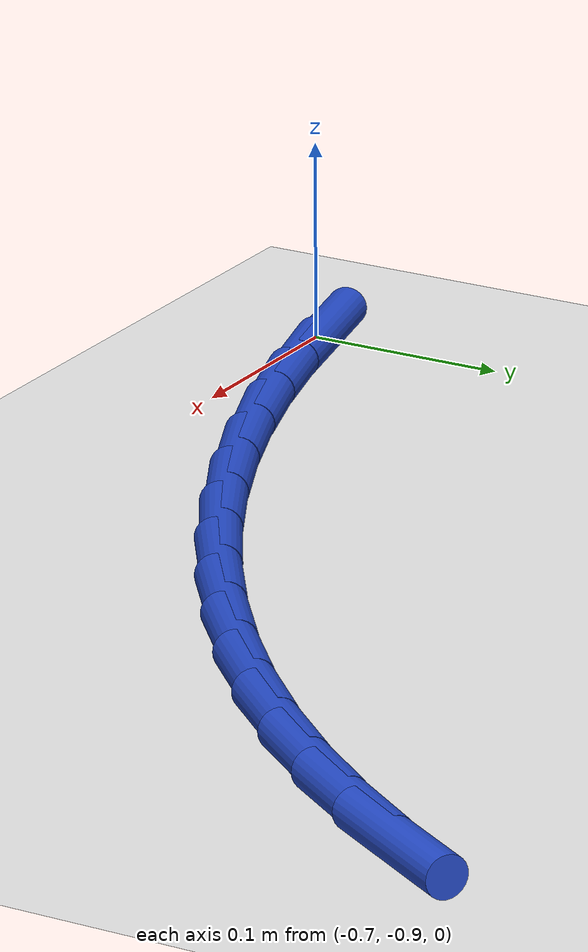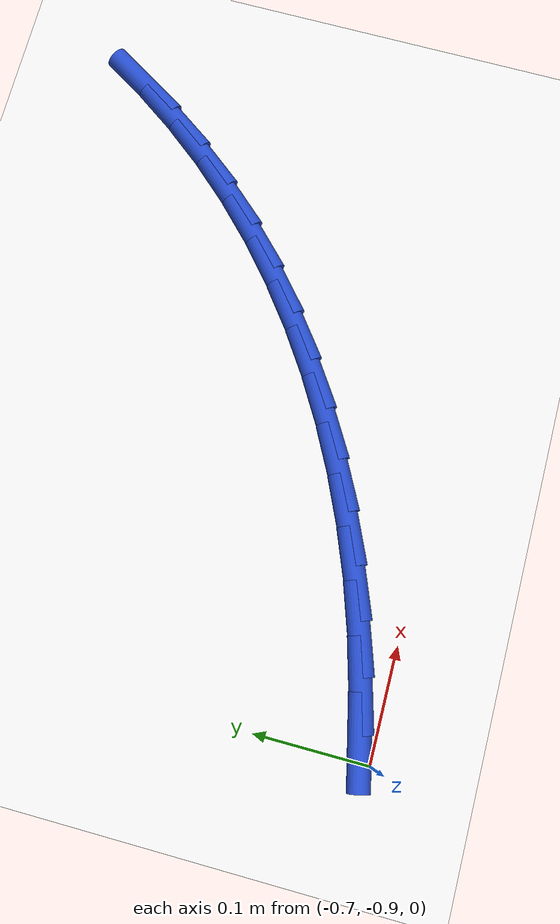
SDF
<sdf version="1.6">
 <world name="default">
  <model name="ground_plane">
   <static>1</static>
   <link name="link">
    <collision name="collision">
     <geometry><plane><normal>0 0 1</normal><size>100 100</size></plane></geometry>
     <surface><friction><ode><mu>100</mu><mu2>50</mu2></ode></friction></surface>
    </collision>
    <visual name="visual">
     <cast_shadows>0</cast_shadows>
     <geometry><plane><normal>0 0 1</normal><size>100 100</size></plane></geometry>
     <material>
      <script><uri>file://media/materials/scripts/gazebo.material</uri><name>Gazebo/WhiteGlow</name></script>
     </material>
    </visual>
   </link>
  </model>
  <model name="line">
   <link name="link_153">
    <pose>-0.6835148173962339 -0.8862740998668704 0.01 0 1.57 0.2207929422384198</pose>
    <collision name="collision">
     <geometry><cylinder><radius>0.01</radius><length>0.08</length></cylinder></geometry>
    </collision>
    <visual name="visual">
     <material>
      <script><name>Gazebo/Blue</name><uri>file://media/materials/scripts/gazebo.material</uri></script>
     </material>
     <geometry><cylinder><radius>0.01</radius><length>0.08</length></cylinder></geometry>
    </visual>
   </link>
   <link name="link_154">
    <pose>-0.6391666564376854 -0.8763200592066808 0.01 0 1.57 0.2716046156278602</pose>
    <collision name="collision">
     <geometry><cylinder><radius>0.01</radius><length>0.08</length></cylinder></geometry>
    </collision>
    <visual name="visual">
     <material>
      <script><name>Gazebo/Blue</name><uri>file://media/materials/scripts/gazebo.material</uri></script>
     </material>
     <geometry><cylinder><radius>0.01</radius><length>0.08</length></cylinder></geometry>
    </visual>
   </link>
   <link name="link_155">
    <pose>-0.595257662807802 -0.8640920004951612 0.01 0 1.57 0.32250294675284435</pose>
    <collision name="collision">
     <geometry><cylinder><radius>0.01</radius><length>0.08</length></cylinder></geometry>
    </collision>
    <visual name="visual">
     <material>
      <script><name>Gazebo/Blue</name><uri>file://media/materials/scripts/gazebo.material</uri></script>
     </material>
     <geometry><cylinder><radius>0.01</radius><length>0.08</length></cylinder></geometry>
    </visual>
   </link>
   <link name="link_156">
    <pose>-0.5519544395109066 -0.8496213825143697 0.01 0 1.57 0.37378701184308577</pose>
    <collision name="collision">
     <geometry><cylinder><radius>0.01</radius><length>0.08</length></cylinder></geometry>
    </collision>
    <visual name="visual">
     <material>
      <script><name>Gazebo/Blue</name><uri>file://media/materials/scripts/gazebo.material</uri></script>
     </material>
     <geometry><cylinder><radius>0.01</radius><length>0.08</length></cylinder></geometry>
    </visual>
   </link>
   <link name="link_157">
    <pose>-0.5094235895513218 -0.8329396640463639 0.01 0 1.57 0.42574965554657723</pose>
    <collision name="collision">
     <geometry><cylinder><radius>0.01</radius><length>0.08</length></cylinder></geometry>
    </collision>
    <visual name="visual">
     <material>
      <script><name>Gazebo/Blue</name><uri>file://media/materials/scripts/gazebo.material</uri></script>
     </material>
     <geometry><cylinder><radius>0.01</radius><length>0.08</length></cylinder></geometry>
    </visual>
   </link>
   <link name="link_158">
    <pose>-0.46783171593337103 -0.8140783038732018 0.01 0 1.57 0.47867648211567737</pose>
    <collision name="collision">
     <geometry><cylinder><radius>0.01</radius><length>0.08</length></cylinder></geometry>
    </collision>
    <visual name="visual">
     <material>
      <script><name>Gazebo/Blue</name><uri>file://media/materials/scripts/gazebo.material</uri></script>
     </material>
     <geometry><cylinder><radius>0.01</radius><length>0.08</length></cylinder></geometry>
    </visual>
   </link>
   <link name="link_159">
    <pose>-0.4273454216613767 -0.7930687607769407 0.01 0 1.57 0.5328438139047338</pose>
    <collision name="collision">
     <geometry><cylinder><radius>0.01</radius><length>0.08</length></cylinder></geometry>
    </collision>
    <visual name="visual">
     <material>
      <script><name>Gazebo/Blue</name><uri>file://media/materials/scripts/gazebo.material</uri></script>
     </material>
     <geometry><cylinder><radius>0.01</radius><length>0.08</length></cylinder></geometry>
    </visual>
   </link>
   <link name="link_160">
    <pose>-0.38813130973966375 -0.7699424935396398 0.01 0 1.57 0.5885152456050112</pose>
    <collision name="collision">
     <geometry><cylinder><radius>0.01</radius><length>0.08</length></cylinder></geometry>
    </collision>
    <visual name="visual">
     <material>
      <script><name>Gazebo/Blue</name><uri>file://media/materials/scripts/gazebo.material</uri></script>
     </material>
     <geometry><cylinder><radius>0.01</radius><length>0.08</length></cylinder></geometry>
    </visual>
   </link>
   <link name="link_161">
    <pose>-0.35035598317255423 -0.744730960943356 0.01 0 1.57 0.6459364288148008</pose>
    <collision name="collision">
     <geometry><cylinder><radius>0.01</radius><length>0.08</length></cylinder></geometry>
    </collision>
    <visual name="visual">
     <material>
      <script><name>Gazebo/Blue</name><uri>file://media/materials/scripts/gazebo.material</uri></script>
     </material>
     <geometry><cylinder><radius>0.01</radius><length>0.08</length></cylinder></geometry>
    </visual>
   </link>
   <link name="link_162">
    <pose>-0.3141860449643715 -0.7174656217701473 0.01 0 1.57 0.7053277641952287</pose>
    <collision name="collision">
     <geometry><cylinder><radius>0.01</radius><length>0.08</length></cylinder></geometry>
    </collision>
    <visual name="visual">
     <material>
      <script><name>Gazebo/Blue</name><uri>file://media/materials/scripts/gazebo.material</uri></script>
     </material>
     <geometry><cylinder><radius>0.01</radius><length>0.08</length></cylinder></geometry>
    </visual>
   </link>
   <link name="link_163">
    <pose>-0.2797880981194387 -0.6881779348020717 0.01 0 1.57 0.7668747900399141</pose>
    <collision name="collision">
     <geometry><cylinder><radius>0.01</radius><length>0.08</length></cylinder></geometry>
    </collision>
    <visual name="visual">
     <material>
      <script><name>Gazebo/Blue</name><uri>file://media/materials/scripts/gazebo.material</uri></script>
     </material>
     <geometry><cylinder><radius>0.01</radius><length>0.08</length></cylinder></geometry>
    </visual>
   </link>
   <link name="link_164">
    <pose>-0.24732874564207918 -0.656899358821187 0.01 0 1.57 0.8305410027735307</pose>
    <collision name="collision">
     <geometry><cylinder><radius>0.01</radius><length>0.08</length></cylinder></geometry>
    </collision>
    <visual name="visual">
     <material>
      <script><name>Gazebo/Blue</name><uri>file://media/materials/scripts/gazebo.material</uri></script>
     </material>
     <geometry><cylinder><radius>0.01</radius><length>0.08</length></cylinder></geometry>
    </visual>
   </link>
   <link name="link_165">
    <pose>-0.2169686733424791 -0.623666572649483 0.01 0 1.57 0.8934239125320302</pose>
    <collision name="collision">
     <geometry><cylinder><radius>0.01</radius><length>0.08</length></cylinder></geometry>
    </collision>
    <visual name="visual">
     <material>
      <script><name>Gazebo/Blue</name><uri>file://media/materials/scripts/gazebo.material</uri></script>
     </material>
     <geometry><cylinder><radius>0.01</radius><length>0.08</length></cylinder></geometry>
    </visual>
   </link>
   <link name="link_166">
    <pose>-0.1887678608554641 -0.5886050962462723 0.01 0 1.57 0.9531058215592031</pose>
    <collision name="collision">
     <geometry><cylinder><radius>0.01</radius><length>0.08</length></cylinder></geometry>
    </collision>
    <visual name="visual">
     <material>
      <script><name>Gazebo/Blue</name><uri>file://media/materials/scripts/gazebo.material</uri></script>
     </material>
     <geometry><cylinder><radius>0.01</radius><length>0.08</length></cylinder></geometry>
    </visual>
   </link>
   <link name="link_167">
    <pose>-0.16270202796105085 -0.5519147820664131 0.01 0 1.57 1.0096617785608928</pose>
    <collision name="collision">
     <geometry><cylinder><radius>0.01</radius><length>0.08</length></cylinder></geometry>
    </collision>
    <visual name="visual">
     <material>
      <script><name>Gazebo/Blue</name><uri>file://media/materials/scripts/gazebo.material</uri></script>
     </material>
     <geometry><cylinder><radius>0.01</radius><length>0.08</length></cylinder></geometry>
    </visual>
   </link>
  </model>
 </world>
</sdf>
